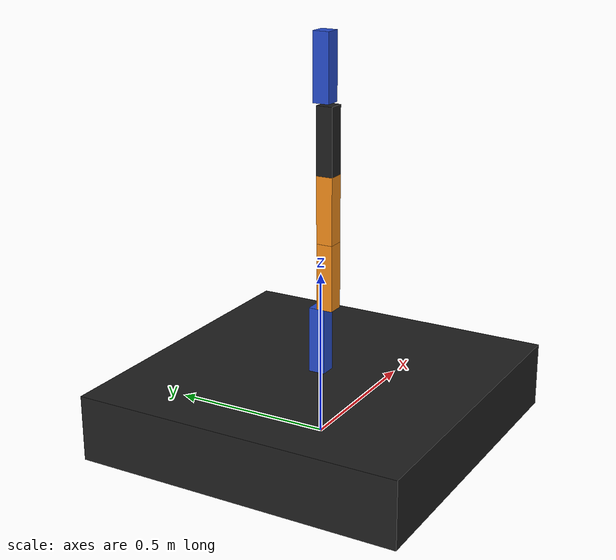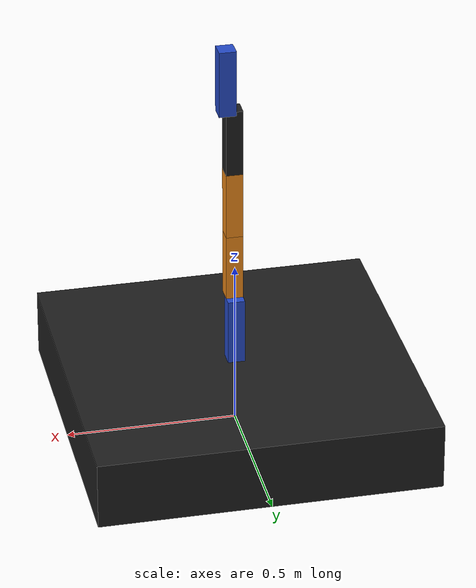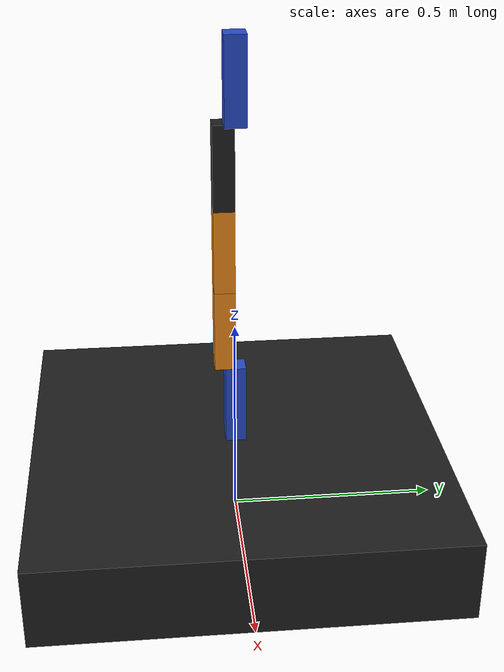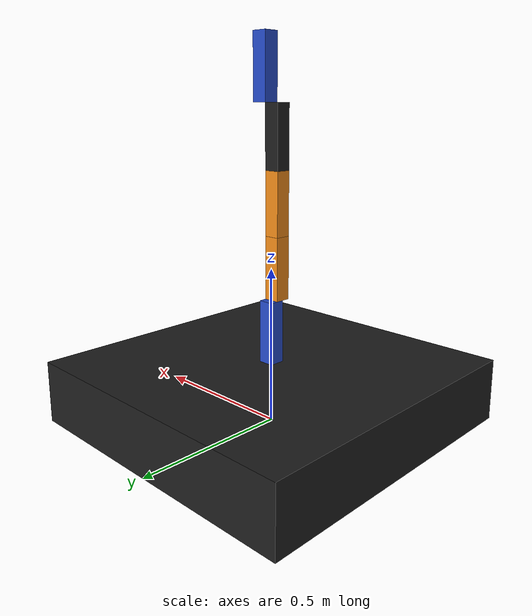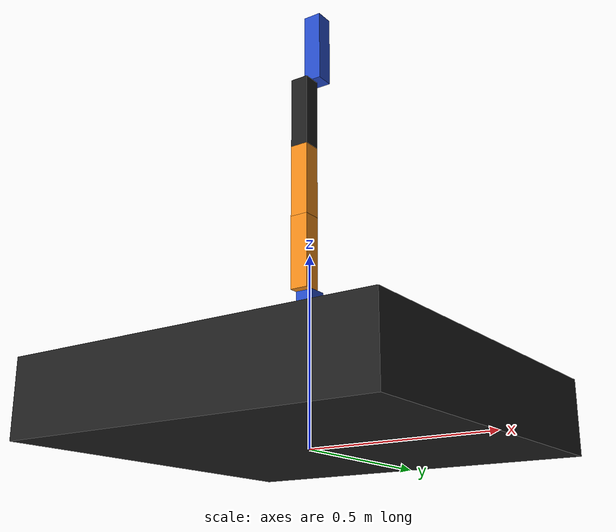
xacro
<?xml version="1.0"?>
<robot xmlns:xacro="http://www.ros.org/wiki/xacro"
 	xmlns:sensor="http://playerstage.sourceforge.net/gazebo/xmlschema/#sensor"
    	xmlns:controller="http://playerstage.sourceforge.net/gazebo/xmlschema/#controller"
    	xmlns:interface="http://playerstage.sourceforge.net/gazebo/xmlschema/#interface"
	name="model">
<!-- Import all Gazebo-customization elements, including Gazebo colors -->
<xacro:include filename="$(find forward_kinematics)/urdf/robot.gazebo" />
<!-- The Constants for the robot dims-->

<xacro:property name="PI" value="3.1415926535897931"/>
<xacro:property name="density" value="240"/> <!-- density of mild steel-->
<xacro:property name="link_length" value="0.2"/>
<xacro:property name="link_width" value="0.05"/>
<xacro:property name="base_width" value="1"/>
<xacro:property name="base_height" value="0.2"/>
<xacro:property name="link_mass" value="${density * link_width * link_width * link_length}"/>

<xacro:macro name="default_visual" params = "x_k y_k z_k x_c y_c z_c">
  <visual>
    <geometry>
      <box size=  "${x_k}   ${y_k}   ${z_k}"/>
    </geometry>
    <origin xyz = "${x_c/2} ${y_c/2} ${z_c/2} " rpy="0 0 0"/>
  </visual>
</xacro:macro>

<xacro:macro name="default_collision" params = "x_k y_k z_k x_c y_c z_c">
  <collision>
    <geometry>
      <box size=  "${x_k}   ${y_k}   ${z_k}"/>
    </geometry>
    <origin xyz = "${x_c/2} ${y_c/2} ${z_c/2} " rpy="0 0 0"/>
  </collision>
</xacro:macro>

<xacro:macro name="default_inertial" params="mass x_k y_k z_k x_c y_c z_c">
<!-- https://en.wikipedia.org/wiki/Moment_of_inertia
and https://en.wikipedia.org/wiki/List_of_moments_of_inertia -->
  <inertial>
    <origin xyz = "${x_c/2} ${y_c/2} ${z_c/2}" rpy="0 0 0"/>
    <mass value="${mass}"/>
    <inertia
    ixx="${mass / 12.0 * (y_k * y_k + z_k * z_k)}" ixy="0.0" ixz="0.0"
    iyy="${mass / 12.0 * (x_k * x_k + z_k * z_k)}" iyz="0.0"
    izz="${mass / 12.0 * (x_k * x_k + y_k * y_k)}"/>
  </inertial>
</xacro:macro>

<link name="base_footprint"/>

<link name="base_link">
   <xacro:default_visual    x_k ="${base_width}" y_k ="${base_width}" z_k ="${base_height}" x_c = "0." y_c = "0." z_c = "${base_height}"/>
   <xacro:default_collision x_k ="${base_width}" y_k ="${base_width}" z_k ="${base_height}" x_c = "0." y_c = "0." z_c = "${base_height}"/>
   <xacro:default_inertial  x_k ="${base_width}" y_k ="${base_width}" z_k ="${base_height}" x_c = "0." y_c = "0." z_c = "${base_height}" mass="${link_mass}"/>
</link>

<joint name="base_footprint_joint" type="fixed">
  <parent link="base_footprint"/>
  <child link="base_link"/>
  <origin xyz="0 0 0" rpy="0 0 0"/>
</joint>

<!-- LINK: link1 -->
<link name="link1">
   <xacro:default_visual    x_k ="${link_width}" y_k ="${link_width}" z_k ="${link_length}" x_c = "0." y_c = "0." z_c = "${link_length}"/>
   <xacro:default_collision x_k ="${link_width}" y_k ="${link_width}" z_k ="${link_length}" x_c = "0." y_c = "0." z_c = "${link_length}"/>
   <xacro:default_inertial  x_k ="${link_width}" y_k ="${link_width}" z_k ="${link_length}" x_c = "0." y_c = "0." z_c = "${link_length}" mass="${link_mass}"/>
</link>

<!-- base joint; joint then link-->
<joint name="base_to_link1" type="continuous">
  <parent link="base_link"/>
  <child link="link1"/>
  <origin xyz="0 0 ${base_height}" rpy="0 0 0"/>
  <axis xyz = "0 0 1"/>
    <dynamics damping="0.06"/>
</joint>

<link name="link2">
   <xacro:default_visual    x_k ="${link_width}" y_k ="${link_length}" z_k ="${link_width}" x_c = "0." y_c = "${link_length}" z_c = "${link_width}"/>
   <xacro:default_collision x_k ="${link_width}" y_k ="${link_length}" z_k ="${link_width}" x_c = "0." y_c = "${link_length}" z_c = "${link_width}"/>
   <xacro:default_inertial  x_k ="${link_width}" y_k ="${link_length}" z_k ="${link_width}" x_c = "0." y_c = "${link_length}" z_c = "${link_width}" mass="${link_mass}"/>
</link>

<joint name="link1_to_link2" type="revolute">
  <parent link="link1"/>
  <child link="link2"/>
  <origin xyz="0 0 ${link_length}" rpy="${PI/2} 0 0"/>
  <axis xyz = "0 0 1"/>
  <limit effort="30" upper="1.5" lower="-1.5" velocity="1.0"/>
    <dynamics damping="0.06"/>
</joint>

<link name="link3">
   <xacro:default_visual    x_k ="${link_width}" y_k ="${link_length}" z_k ="${link_width}" x_c = "0." y_c = "${link_length}" z_c = "${link_width}"/>
   <xacro:default_collision x_k ="${link_width}" y_k ="${link_length}" z_k ="${link_width}" x_c = "0." y_c = "${link_length}" z_c = "${link_width}"/>
   <xacro:default_inertial  x_k ="${link_width}" y_k ="${link_length}" z_k ="${link_width}" x_c = "0." y_c = "${link_length}" z_c = "${link_width}" mass="${link_mass}"/>
</link>

<joint name="link2_to_link3" type="revolute">
  <parent link="link2"/>
  <child link="link3"/>
  <origin xyz="0 ${link_length} 0" rpy="0 0 0"/>
  <axis xyz = "0 0 1"/>
  <limit effort="30" upper="1.5" lower="-1.5" velocity="1.0"/>
    <dynamics damping="0.06"/>
</joint>

<link name="link4">
   <xacro:default_visual    x_k ="${link_width}" y_k ="${link_length}" z_k ="${link_width}" x_c = "0." y_c = "${link_length}" z_c = "${link_width}"/>
   <xacro:default_collision x_k ="${link_width}" y_k ="${link_length}" z_k ="${link_width}" x_c = "0." y_c = "${link_length}" z_c = "${link_width}"/>
   <xacro:default_inertial  x_k ="${link_width}" y_k ="${link_length}" z_k ="${link_width}" x_c = "0." y_c = "${link_length}" z_c = "${link_width}" mass="${link_mass}"/>
</link>

<joint name="link3_to_link4" type="revolute">
  <parent link="link3"/>
  <child link="link4"/>
  <origin xyz="0 ${link_length} 0" rpy="0 0 0"/>
  <axis xyz = "0 0 1"/>
  <limit effort="30" upper="1.5" lower="-1.5" velocity="1.0"/>
    <dynamics damping="0.06"/>
</joint>

<link name="link5">
   <xacro:default_visual    x_k ="${link_width}" y_k ="${link_length}" z_k ="${link_width}" x_c = "0." y_c = "${link_length}" z_c = "${link_width}"/>
   <xacro:default_collision x_k ="${link_width}" y_k ="${link_length}" z_k ="${link_width}" x_c = "0." y_c = "${link_length}" z_c = "${link_width}"/>
   <xacro:default_inertial  x_k ="${link_width}" y_k ="${link_length}" z_k ="${link_width}" x_c = "0." y_c = "${link_length}" z_c = "${link_width}" mass="${link_mass}"/>
</link>

<joint name="link4_to_link5" type="revolute">
  <parent link="link4"/>
  <child link="link5"/>
  <origin xyz="0 ${link_length} 0" rpy="0 ${PI/2} 0"/>
  <axis xyz = "0 0 1"/>
  <limit effort="30" upper="1.5" lower="-1.5" velocity="1.0"/>
    <dynamics damping="0.06"/>
</joint>

<transmission name="tran1">
  <type>transmission_interface/SimpleTransmission</type>
  <joint name="base_to_link1">
    <hardwareInterface>hardware_interface/EffortJointInterface</hardwareInterface>
  </joint>
  <actuator name="motor1">
    <hardwareInterface>hardware_interface/EffortJointInterface</hardwareInterface>
    <mechanicalReduction>1</mechanicalReduction>
  </actuator>
</transmission>

<transmission name="tran2">
  <type>transmission_interface/SimpleTransmission</type>
  <joint name="link1_to_link2">
    <hardwareInterface>hardware_interface/EffortJointInterface</hardwareInterface>
  </joint>
  <actuator name="motor2">
    <hardwareInterface>hardware_interface/EffortJointInterface</hardwareInterface>
    <mechanicalReduction>1</mechanicalReduction>
  </actuator>
</transmission>

<transmission name="tran3">
  <type>transmission_interface/SimpleTransmission</type>
  <joint name="link2_to_link3">
    <hardwareInterface>hardware_interface/EffortJointInterface</hardwareInterface>
  </joint>
  <actuator name="motor3">
    <hardwareInterface>hardware_interface/EffortJointInterface</hardwareInterface>
    <mechanicalReduction>1</mechanicalReduction>
  </actuator>
</transmission>

<transmission name="tran4">
  <type>transmission_interface/SimpleTransmission</type>
  <joint name="link3_to_link4">
    <hardwareInterface>hardware_interface/EffortJointInterface</hardwareInterface>
  </joint>
  <actuator name="motor4">
    <hardwareInterface>hardware_interface/EffortJointInterface</hardwareInterface>
    <mechanicalReduction>1</mechanicalReduction>
  </actuator>
</transmission>

<transmission name="tran5">
  <type>transmission_interface/SimpleTransmission</type>
  <joint name="link4_to_link5">
    <hardwareInterface>hardware_interface/EffortJointInterface</hardwareInterface>
  </joint>
  <actuator name="motor5">
    <hardwareInterface>hardware_interface/EffortJointInterface</hardwareInterface>
    <mechanicalReduction>1</mechanicalReduction>
  </actuator>
</transmission>

</robot>
